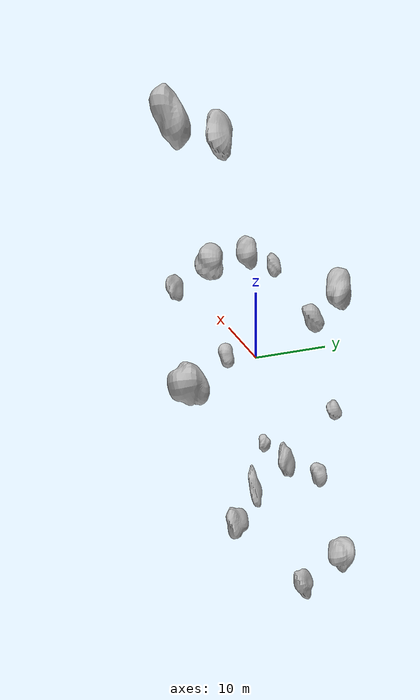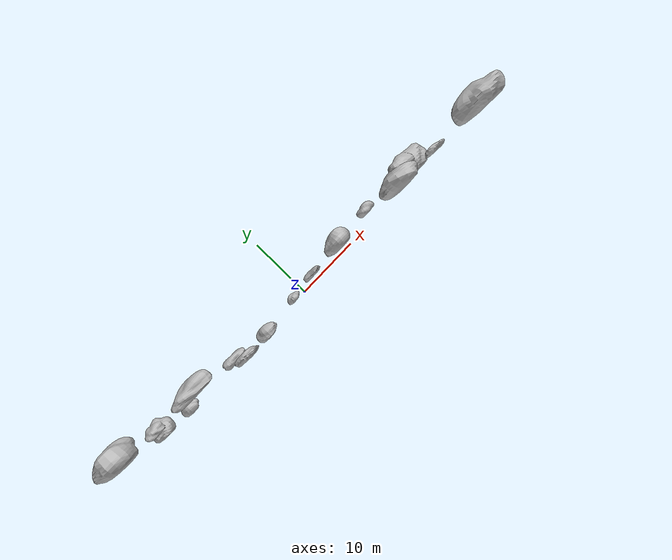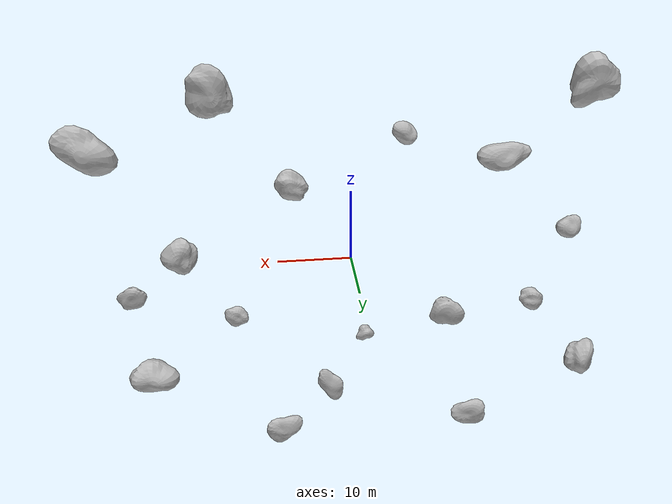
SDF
<?xml version="1.0"?>
<sdf version="1.5">
  <model name="underwater_rocks">
    <static>true</static>
    <link name="link">
      <visual name="visual">
        <geometry>
          <mesh>
            <uri>model://underwater_rocks/meshes/rocks.obj</uri>
          </mesh>
        </geometry>
      </visual>
      <collision name="collision">
        <geometry>
          <mesh>
            <uri>model://underwater_rocks/meshes/rocks.obj</uri>
          </mesh>
        </geometry>
      </collision>
    </link>
  </model>
</sdf>
